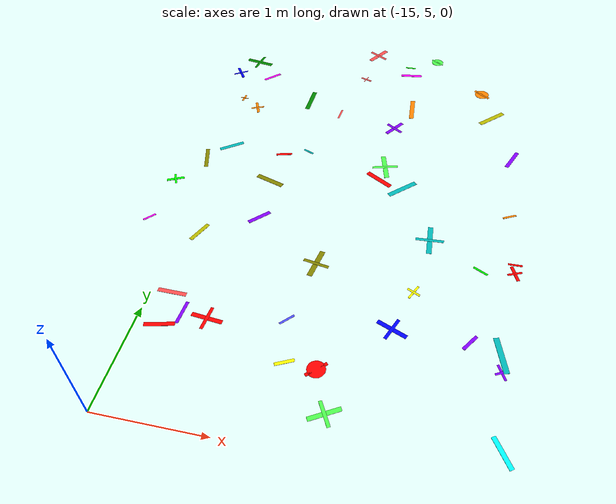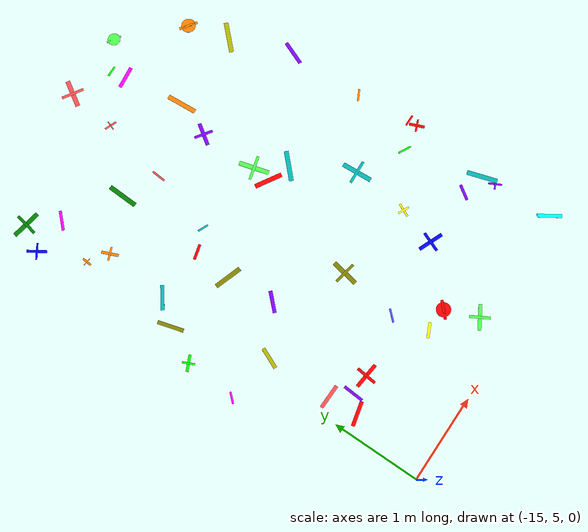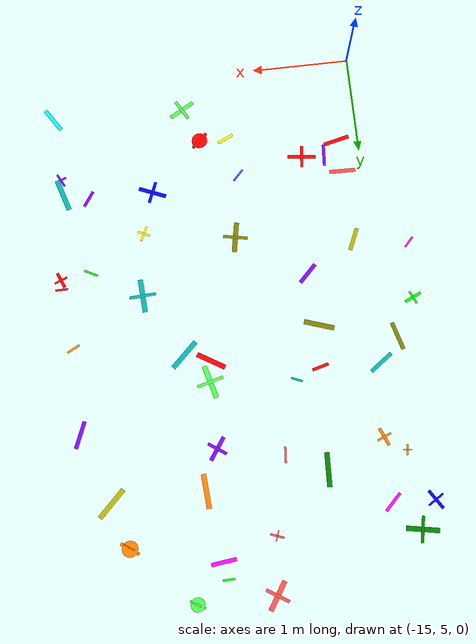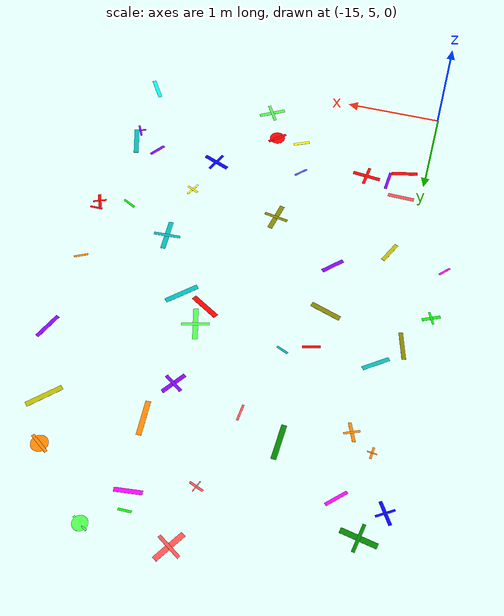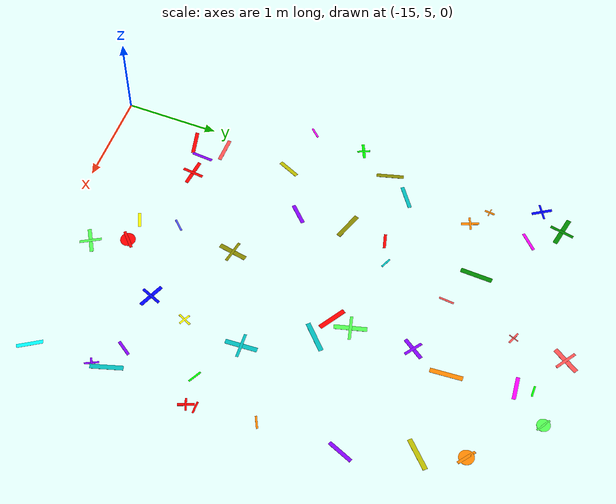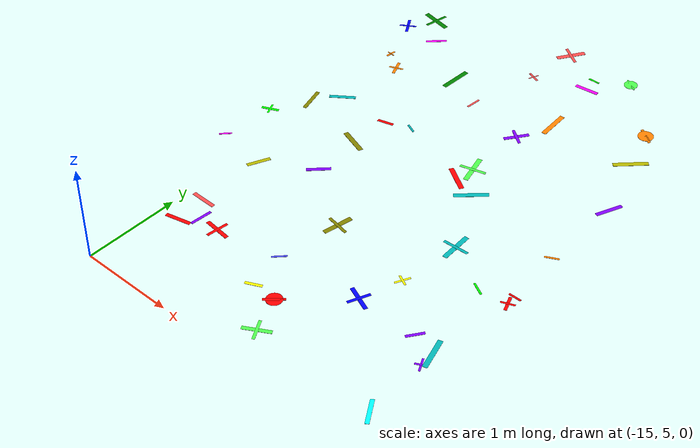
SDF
<sdf version="1.6">
 <world name="default">
  <model name="letter_S_65">
   <static>true</static>
   <pose>-14.63 6.02 0.012 0 0 1.501</pose>
   <link name="link">
    <visual name="visual">
     <geometry><box><size>0.23 0.03 0.002</size></box></geometry>
     <material>
      <ambient>0.5 0.0 1.0 1</ambient>
      <diffuse>0.5 0.0 1.0 1</diffuse>
      <specular>0.1 0.1 0.1 1</specular>
     </material>
    </visual>
   </link>
  </model>
  <model name="letter_M_66">
   <static>true</static>
   <pose>-14.80 6.21 0.011 0 0 6.264</pose>
   <link name="link">
    <visual name="visual">
     <geometry><box><size>0.27 0.04 0.002</size></box></geometry>
     <material>
      <ambient>1.0 0.3 0.3 1</ambient>
      <diffuse>1.0 0.3 0.3 1</diffuse>
      <specular>0.1 0.1 0.1 1</specular>
     </material>
    </visual>
   </link>
  </model>
  <model name="letter_K_67">
   <static>true</static>
   <pose>-14.78 5.87 0.004 0 0 0.232</pose>
   <link name="link">
    <visual name="visual">
     <geometry><box><size>0.27 0.04 0.002</size></box></geometry>
     <material>
      <ambient>1.0 0.0 0.0 1</ambient>
      <diffuse>1.0 0.0 0.0 1</diffuse>
      <specular>0.1 0.1 0.1 1</specular>
     </material>
    </visual>
   </link>
  </model>
  <model name="letter_Z_68">
   <static>true</static>
   <pose>-14.82 6.95 0.009 0 0 4.296</pose>
   <link name="link">
    <visual name="visual">
     <geometry><box><size>0.24 0.04 0.002</size></box></geometry>
     <material>
      <ambient>0.7 0.7 0.0 1</ambient>
      <diffuse>0.7 0.7 0.0 1</diffuse>
      <specular>0.1 0.1 0.1 1</specular>
     </material>
    </visual>
   </link>
  </model>
  <model name="letter_Y_69">
   <static>true</static>
   <pose>-15.38 7.04 0.006 0 0 3.974</pose>
   <link name="link">
    <visual name="visual">
     <geometry><box><size>0.13 0.02 0.002</size></box></geometry>
     <material>
      <ambient>1.0 0.0 1.0 1</ambient>
      <diffuse>1.0 0.0 1.0 1</diffuse>
      <specular>0.1 0.1 0.1 1</specular>
     </material>
    </visual>
   </link>
  </model>
  <model name="letter_X_70">
   <static>true</static>
   <pose>-15.13 8.00 0.010 0 0 4.986</pose>
   <link name="link">
    <visual name="visual">
     <geometry><box><size>0.29 0.04 0.002</size></box></geometry>
     <material>
      <ambient>0.5 0.5 0.0 1</ambient>
      <diffuse>0.5 0.5 0.0 1</diffuse>
      <specular>0.1 0.1 0.1 1</specular>
     </material>
    </visual>
   </link>
  </model>
  <model name="letter_H_71">
   <static>true</static>
   <pose>-15.34 7.62 0.004 0 0 3.576</pose>
   <link name="link">
    <visual name="visual">
     <geometry><box><size>0.18 0.03 0.002</size></box></geometry>
     <material>
      <ambient>0.0 1.0 0.0 1</ambient>
      <diffuse>0.0 1.0 0.0 1</diffuse>
      <specular>0.1 0.1 0.1 1</specular>
     </material>
    </visual>
    <visual name="visual2">
     <pose>0 0 0.001 0 0 1.57</pose>
     <geometry><box><size>0.14 0.02 0.001</size></box></geometry>
     <material><ambient>0.0 1.0 0.0 1</ambient><diffuse>0.0 1.0 0.0 1</diffuse></material>
    </visual>
   </link>
  </model>
  <model name="letter_J_72">
   <static>true</static>
   <pose>-14.93 8.25 0.008 0 0 0.635</pose>
   <link name="link">
    <visual name="visual">
     <geometry><box><size>0.27 0.04 0.002</size></box></geometry>
     <material>
      <ambient>0.0 0.7 0.7 1</ambient>
      <diffuse>0.0 0.7 0.7 1</diffuse>
      <specular>0.1 0.1 0.1 1</specular>
     </material>
    </visual>
   </link>
  </model>
  <model name="letter_I_73">
   <static>true</static>
   <pose>-15.07 9.14 0.006 0 0 4.610</pose>
   <link name="link">
    <visual name="visual">
     <geometry><box><size>0.11 0.02 0.002</size></box></geometry>
     <material>
      <ambient>1.0 0.5 0.0 1</ambient>
      <diffuse>1.0 0.5 0.0 1</diffuse>
      <specular>0.1 0.1 0.1 1</specular>
     </material>
    </visual>
    <visual name="visual2">
     <pose>0 0 0.001 0 0 1.57</pose>
     <geometry><box><size>0.09 0.01 0.001</size></box></geometry>
     <material><ambient>1.0 0.5 0.0 1</ambient><diffuse>1.0 0.5 0.0 1</diffuse></material>
    </visual>
   </link>
  </model>
  <model name="letter_A_74">
   <static>true</static>
   <pose>-14.86 8.99 0.005 0 0 5.111</pose>
   <link name="link">
    <visual name="visual">
     <geometry><box><size>0.19 0.03 0.002</size></box></geometry>
     <material>
      <ambient>1.0 0.5 0.0 1</ambient>
      <diffuse>1.0 0.5 0.0 1</diffuse>
      <specular>0.1 0.1 0.1 1</specular>
     </material>
    </visual>
    <visual name="visual2">
     <pose>0 0 0.001 0 0 1.57</pose>
     <geometry><box><size>0.15 0.02 0.001</size></box></geometry>
     <material><ambient>1.0 0.5 0.0 1</ambient><diffuse>1.0 0.5 0.0 1</diffuse></material>
    </visual>
   </link>
  </model>
  <model name="letter_H_75">
   <static>true</static>
   <pose>-15.11 9.92 0.009 0 0 6.105</pose>
   <link name="link">
    <visual name="visual">
     <geometry><box><size>0.33 0.05 0.002</size></box></geometry>
     <material>
      <ambient>0.0 0.5 0.0 1</ambient>
      <diffuse>0.0 0.5 0.0 1</diffuse>
      <specular>0.1 0.1 0.1 1</specular>
     </material>
    </visual>
    <visual name="visual2">
     <pose>0 0 0.001 0 0 1.57</pose>
     <geometry><box><size>0.26 0.03 0.001</size></box></geometry>
     <material><ambient>0.0 0.5 0.0 1</ambient><diffuse>0.0 0.5 0.0 1</diffuse></material>
    </visual>
   </link>
  </model>
  <model name="letter_U_76">
   <static>true</static>
   <pose>-14.86 9.63 0.012 0 0 3.933</pose>
   <link name="link">
    <visual name="visual">
     <geometry><box><size>0.22 0.03 0.002</size></box></geometry>
     <material>
      <ambient>1.0 0.0 1.0 1</ambient>
      <diffuse>1.0 0.0 1.0 1</diffuse>
      <specular>0.1 0.1 0.1 1</specular>
     </material>
    </visual>
   </link>
  </model>
  <model name="letter_T_77">
   <static>true</static>
   <pose>-15.28 9.65 0.003 0 0 5.283</pose>
   <link name="link">
    <visual name="visual">
     <geometry><box><size>0.22 0.03 0.002</size></box></geometry>
     <material>
      <ambient>0.0 0.0 1.0 1</ambient>
      <diffuse>0.0 0.0 1.0 1</diffuse>
      <specular>0.1 0.1 0.1 1</specular>
     </material>
    </visual>
    <visual name="visual2">
     <pose>0 0 0.001 0 0 1.57</pose>
     <geometry><box><size>0.18 0.02 0.001</size></box></geometry>
     <material><ambient>0.0 0.0 1.0 1</ambient><diffuse>0.0 0.0 1.0 1</diffuse></material>
    </visual>
   </link>
  </model>
  <model name="letter_W_144">
   <static>true</static>
   <pose>-13.72 6.14 0.008 0 0 0.814</pose>
   <link name="link">
    <visual name="visual">
     <geometry><box><size>0.15 0.02 0.002</size></box></geometry>
     <material>
      <ambient>0.3 0.3 1.0 1</ambient>
      <diffuse>0.3 0.3 1.0 1</diffuse>
      <specular>0.1 0.1 0.1 1</specular>
     </material>
    </visual>
   </link>
  </model>
  <model name="letter_W_145">
   <static>true</static>
   <pose>-13.63 5.73 0.011 0 0 3.585</pose>
   <link name="link">
    <visual name="visual">
     <geometry><box><size>0.17 0.03 0.002</size></box></geometry>
     <material>
      <ambient>1.0 1.0 0.0 1</ambient>
      <diffuse>1.0 1.0 0.0 1</diffuse>
      <specular>0.1 0.1 0.1 1</specular>
     </material>
    </visual>
   </link>
  </model>
  <model name="letter_L_146">
   <static>true</static>
   <pose>-14.40 6.01 0.008 0 0 6.177</pose>
   <link name="link">
    <visual name="visual">
     <geometry><box><size>0.29 0.04 0.002</size></box></geometry>
     <material>
      <ambient>1.0 0.0 0.0 1</ambient>
      <diffuse>1.0 0.0 0.0 1</diffuse>
      <specular>0.1 0.1 0.1 1</specular>
     </material>
    </visual>
    <visual name="visual2">
     <pose>0 0 0.001 0 0 1.57</pose>
     <geometry><box><size>0.23 0.03 0.001</size></box></geometry>
     <material><ambient>1.0 0.0 0.0 1</ambient><diffuse>1.0 0.0 0.0 1</diffuse></material>
    </visual>
   </link>
  </model>
  <model name="letter_T_147">
   <static>true</static>
   <pose>-13.62 6.80 0.007 0 0 1.390</pose>
   <link name="link">
    <visual name="visual">
     <geometry><box><size>0.31 0.05 0.002</size></box></geometry>
     <material>
      <ambient>0.5 0.5 0.0 1</ambient>
      <diffuse>0.5 0.5 0.0 1</diffuse>
      <specular>0.1 0.1 0.1 1</specular>
     </material>
    </visual>
    <visual name="visual2">
     <pose>0 0 0.001 0 0 1.57</pose>
     <geometry><box><size>0.25 0.03 0.001</size></box></geometry>
     <material><ambient>0.5 0.5 0.0 1</ambient><diffuse>0.5 0.5 0.0 1</diffuse></material>
    </visual>
   </link>
  </model>
  <model name="letter_J_148">
   <static>true</static>
   <pose>-14.31 7.26 0.010 0 0 0.794</pose>
   <link name="link">
    <visual name="visual">
     <geometry><box><size>0.24 0.04 0.002</size></box></geometry>
     <material>
      <ambient>0.5 0.0 1.0 1</ambient>
      <diffuse>0.5 0.0 1.0 1</diffuse>
      <specular>0.1 0.1 0.1 1</specular>
     </material>
    </visual>
   </link>
  </model>
  <model name="letter_J_149">
   <static>true</static>
   <pose>-14.32 8.23 0.013 0 0 0.267</pose>
   <link name="link">
    <visual name="visual">
     <geometry><box><size>0.17 0.03 0.002</size></box></geometry>
     <material>
      <ambient>1.0 0.0 0.0 1</ambient>
      <diffuse>1.0 0.0 0.0 1</diffuse>
      <specular>0.1 0.1 0.1 1</specular>
     </material>
    </visual>
   </link>
  </model>
  <model name="letter_Z_150">
   <static>true</static>
   <pose>-14.36 7.80 0.004 0 0 5.964</pose>
   <link name="link">
    <visual name="visual">
     <geometry><box><size>0.31 0.05 0.002</size></box></geometry>
     <material>
      <ambient>0.5 0.5 0.0 1</ambient>
      <diffuse>0.5 0.5 0.0 1</diffuse>
      <specular>0.1 0.1 0.1 1</specular>
     </material>
    </visual>
   </link>
  </model>
  <model name="letter_W_151">
   <static>true</static>
   <pose>-14.07 8.33 0.010 0 0 5.882</pose>
   <link name="link">
    <visual name="visual">
     <geometry><box><size>0.12 0.02 0.002</size></box></geometry>
     <material>
      <ambient>0.0 0.7 0.7 1</ambient>
      <diffuse>0.0 0.7 0.7 1</diffuse>
      <specular>0.1 0.1 0.1 1</specular>
     </material>
    </visual>
   </link>
  </model>
  <model name="letter_J_152">
   <static>true</static>
   <pose>-13.87 9.06 0.011 0 0 1.491</pose>
   <link name="link">
    <visual name="visual">
     <geometry><box><size>0.16 0.02 0.002</size></box></geometry>
     <material>
      <ambient>1.0 0.3 0.3 1</ambient>
      <diffuse>1.0 0.3 0.3 1</diffuse>
      <specular>0.1 0.1 0.1 1</specular>
     </material>
    </visual>
   </link>
  </model>
  <model name="letter_R_153">
   <static>true</static>
   <pose>-14.27 9.25 0.010 0 0 1.534</pose>
   <link name="link">
    <visual name="visual">
     <geometry><box><size>0.34 0.05 0.002</size></box></geometry>
     <material>
      <ambient>0.0 0.5 0.0 1</ambient>
      <diffuse>0.0 0.5 0.0 1</diffuse>
      <specular>0.1 0.1 0.1 1</specular>
     </material>
    </visual>
   </link>
  </model>
  <model name="letter_A_154">
   <static>true</static>
   <pose>-13.64 10.39 0.007 0 0 1.010</pose>
   <link name="link">
    <visual name="visual">
     <geometry><box><size>0.31 0.05 0.002</size></box></geometry>
     <material>
      <ambient>1.0 0.3 0.3 1</ambient>
      <diffuse>1.0 0.3 0.3 1</diffuse>
      <specular>0.1 0.1 0.1 1</specular>
     </material>
    </visual>
    <visual name="visual2">
     <pose>0 0 0.001 0 0 1.57</pose>
     <geometry><box><size>0.25 0.03 0.001</size></box></geometry>
     <material><ambient>1.0 0.3 0.3 1</ambient><diffuse>1.0 0.3 0.3 1</diffuse></material>
    </visual>
   </link>
  </model>
  <model name="letter_T_155">
   <static>true</static>
   <pose>-13.70 9.83 0.004 0 0 5.922</pose>
   <link name="link">
    <visual name="visual">
     <geometry><box><size>0.14 0.02 0.002</size></box></geometry>
     <material>
      <ambient>1.0 0.3 0.3 1</ambient>
      <diffuse>1.0 0.3 0.3 1</diffuse>
      <specular>0.1 0.1 0.1 1</specular>
     </material>
    </visual>
    <visual name="visual2">
     <pose>0 0 0.001 0 0 1.57</pose>
     <geometry><box><size>0.11 0.01 0.001</size></box></geometry>
     <material><ambient>1.0 0.3 0.3 1</ambient><diffuse>1.0 0.3 0.3 1</diffuse></material>
    </visual>
   </link>
  </model>
  <model name="letter_I_217">
   <static>true</static>
   <pose>-13.21 5.36 0.006 0 0 0.524</pose>
   <link name="link">
    <visual name="visual">
     <geometry><box><size>0.28 0.04 0.002</size></box></geometry>
     <material>
      <ambient>0.3 1.0 0.3 1</ambient>
      <diffuse>0.3 1.0 0.3 1</diffuse>
      <specular>0.1 0.1 0.1 1</specular>
     </material>
    </visual>
    <visual name="visual2">
     <pose>0 0 0.001 0 0 1.57</pose>
     <geometry><box><size>0.23 0.03 0.001</size></box></geometry>
     <material><ambient>0.3 1.0 0.3 1</ambient><diffuse>0.3 1.0 0.3 1</diffuse></material>
    </visual>
   </link>
  </model>
  <model name="letter_G_218">
   <static>true</static>
   <pose>-13.36 5.72 0.011 0 0 0.750</pose>
   <link name="link">
    <visual name="visual">
     <geometry><box><size>0.21 0.03 0.002</size></box></geometry>
     <material>
      <ambient>1.0 0.0 0.0 1</ambient>
      <diffuse>1.0 0.0 0.0 1</diffuse>
      <specular>0.1 0.1 0.1 1</specular>
     </material>
    </visual>
    <visual name="visual2">
     <geometry><cylinder><radius>0.08</radius><length>0.002</length></cylinder></geometry>
     <material><ambient>1.0 0.0 0.0 1</ambient><diffuse>1.0 0.0 0.0 1</diffuse></material>
    </visual>
   </link>
  </model>
  <model name="letter_A_219">
   <static>true</static>
   <pose>-12.82 6.23 0.007 0 0 5.894</pose>
   <link name="link">
    <visual name="visual">
     <geometry><box><size>0.29 0.04 0.002</size></box></geometry>
     <material>
      <ambient>0.0 0.0 1.0 1</ambient>
      <diffuse>0.0 0.0 1.0 1</diffuse>
      <specular>0.1 0.1 0.1 1</specular>
     </material>
    </visual>
    <visual name="visual2">
     <pose>0 0 0.001 0 0 1.57</pose>
     <geometry><box><size>0.23 0.03 0.001</size></box></geometry>
     <material><ambient>0.0 0.0 1.0 1</ambient><diffuse>0.0 0.0 1.0 1</diffuse></material>
    </visual>
   </link>
  </model>
  <model name="letter_I_220">
   <static>true</static>
   <pose>-12.69 6.66 0.004 0 0 1.126</pose>
   <link name="link">
    <visual name="visual">
     <geometry><box><size>0.16 0.02 0.002</size></box></geometry>
     <material>
      <ambient>1.0 1.0 0.0 1</ambient>
      <diffuse>1.0 1.0 0.0 1</diffuse>
      <specular>0.1 0.1 0.1 1</specular>
     </material>
    </visual>
    <visual name="visual2">
     <pose>0 0 0.001 0 0 1.57</pose>
     <geometry><box><size>0.13 0.02 0.001</size></box></geometry>
     <material><ambient>1.0 1.0 0.0 1</ambient><diffuse>1.0 1.0 0.0 1</diffuse></material>
    </visual>
   </link>
  </model>
  <model name="letter_T_221">
   <static>true</static>
   <pose>-12.62 7.31 0.003 0 0 1.630</pose>
   <link name="link">
    <visual name="visual">
     <geometry><box><size>0.34 0.05 0.002</size></box></geometry>
     <material>
      <ambient>0.0 0.7 0.7 1</ambient>
      <diffuse>0.0 0.7 0.7 1</diffuse>
      <specular>0.1 0.1 0.1 1</specular>
     </material>
    </visual>
    <visual name="visual2">
     <pose>0 0 0.001 0 0 1.57</pose>
     <geometry><box><size>0.27 0.03 0.001</size></box></geometry>
     <material><ambient>0.0 0.7 0.7 1</ambient><diffuse>0.0 0.7 0.7 1</diffuse></material>
    </visual>
   </link>
  </model>
  <model name="letter_W_222">
   <static>true</static>
   <pose>-12.98 7.96 0.005 0 0 0.766</pose>
   <link name="link">
    <visual name="visual">
     <geometry><box><size>0.34 0.05 0.002</size></box></geometry>
     <material>
      <ambient>0.0 0.7 0.7 1</ambient>
      <diffuse>0.0 0.7 0.7 1</diffuse>
      <specular>0.1 0.1 0.1 1</specular>
     </material>
    </visual>
   </link>
  </model>
  <model name="letter_V_223">
   <static>true</static>
   <pose>-13.24 8.05 0.006 0 0 2.602</pose>
   <link name="link">
    <visual name="visual">
     <geometry><box><size>0.31 0.05 0.002</size></box></geometry>
     <material>
      <ambient>1.0 0.0 0.0 1</ambient>
      <diffuse>1.0 0.0 0.0 1</diffuse>
      <specular>0.1 0.1 0.1 1</specular>
     </material>
    </visual>
   </link>
  </model>
  <model name="letter_I_224">
   <static>true</static>
   <pose>-13.21 8.26 0.005 0 0 1.839</pose>
   <link name="link">
    <visual name="visual">
     <geometry><box><size>0.34 0.05 0.002</size></box></geometry>
     <material>
      <ambient>0.3 1.0 0.3 1</ambient>
      <diffuse>0.3 1.0 0.3 1</diffuse>
      <specular>0.1 0.1 0.1 1</specular>
     </material>
    </visual>
    <visual name="visual2">
     <pose>0 0 0.001 0 0 1.57</pose>
     <geometry><box><size>0.27 0.03 0.001</size></box></geometry>
     <material><ambient>0.3 1.0 0.3 1</ambient><diffuse>0.3 1.0 0.3 1</diffuse></material>
    </visual>
   </link>
  </model>
  <model name="letter_S_225">
   <static>true</static>
   <pose>-13.06 9.33 0.004 0 0 4.782</pose>
   <link name="link">
    <visual name="visual">
     <geometry><box><size>0.34 0.05 0.002</size></box></geometry>
     <material>
      <ambient>1.0 0.5 0.0 1</ambient>
      <diffuse>1.0 0.5 0.0 1</diffuse>
      <specular>0.1 0.1 0.1 1</specular>
     </material>
    </visual>
   </link>
  </model>
  <model name="letter_H_226">
   <static>true</static>
   <pose>-13.21 8.93 0.010 0 0 4.113</pose>
   <link name="link">
    <visual name="visual">
     <geometry><box><size>0.26 0.04 0.002</size></box></geometry>
     <material>
      <ambient>0.5 0.0 1.0 1</ambient>
      <diffuse>0.5 0.0 1.0 1</diffuse>
      <specular>0.1 0.1 0.1 1</specular>
     </material>
    </visual>
    <visual name="visual2">
     <pose>0 0 0.001 0 0 1.57</pose>
     <geometry><box><size>0.21 0.03 0.001</size></box></geometry>
     <material><ambient>0.5 0.0 1.0 1</ambient><diffuse>0.5 0.0 1.0 1</diffuse></material>
    </visual>
   </link>
  </model>
  <model name="letter_R_227">
   <static>true</static>
   <pose>-13.19 10.19 0.009 0 0 0.029</pose>
   <link name="link">
    <visual name="visual">
     <geometry><box><size>0.12 0.02 0.002</size></box></geometry>
     <material>
      <ambient>0.0 1.0 0.0 1</ambient>
      <diffuse>0.0 1.0 0.0 1</diffuse>
      <specular>0.1 0.1 0.1 1</specular>
     </material>
    </visual>
   </link>
  </model>
  <model name="letter_B_228">
   <static>true</static>
   <pose>-13.16 10.02 0.009 0 0 0.123</pose>
   <link name="link">
    <visual name="visual">
     <geometry><box><size>0.25 0.04 0.002</size></box></geometry>
     <material>
      <ambient>1.0 0.0 1.0 1</ambient>
      <diffuse>1.0 0.0 1.0 1</diffuse>
      <specular>0.1 0.1 0.1 1</specular>
     </material>
    </visual>
   </link>
  </model>
  <model name="letter_O_229">
   <static>true</static>
   <pose>-12.87 10.39 0.008 0 0 2.586</pose>
   <link name="link">
    <visual name="visual">
     <geometry><box><size>0.17 0.02 0.002</size></box></geometry>
     <material>
      <ambient>0.3 1.0 0.3 1</ambient>
      <diffuse>0.3 1.0 0.3 1</diffuse>
      <specular>0.1 0.1 0.1 1</specular>
     </material>
    </visual>
    <visual name="visual2">
     <geometry><cylinder><radius>0.07</radius><length>0.002</length></cylinder></geometry>
     <material><ambient>0.3 1.0 0.3 1</ambient><diffuse>0.3 1.0 0.3 1</diffuse></material>
    </visual>
   </link>
  </model>
  <model name="letter_V_292">
   <static>true</static>
   <pose>-11.86 5.33 0.012 0 0 5.283</pose>
   <link name="link">
    <visual name="visual">
     <geometry><box><size>0.27 0.04 0.002</size></box></geometry>
     <material>
      <ambient>0.0 1.0 1.0 1</ambient>
      <diffuse>0.0 1.0 1.0 1</diffuse>
      <specular>0.1 0.1 0.1 1</specular>
     </material>
    </visual>
   </link>
  </model>
  <model name="letter_P_293">
   <static>true</static>
   <pose>-11.90 6.16 0.012 0 0 1.872</pose>
   <link name="link">
    <visual name="visual">
     <geometry><box><size>0.34 0.05 0.002</size></box></geometry>
     <material>
      <ambient>0.0 0.7 0.7 1</ambient>
      <diffuse>0.0 0.7 0.7 1</diffuse>
      <specular>0.1 0.1 0.1 1</specular>
     </material>
    </visual>
   </link>
  </model>
  <model name="letter_B_294">
   <static>true</static>
   <pose>-12.16 6.23 0.010 0 0 4.109</pose>
   <link name="link">
    <visual name="visual">
     <geometry><box><size>0.18 0.03 0.002</size></box></geometry>
     <material>
      <ambient>0.5 0.0 1.0 1</ambient>
      <diffuse>0.5 0.0 1.0 1</diffuse>
      <specular>0.1 0.1 0.1 1</specular>
     </material>
    </visual>
   </link>
  </model>
  <model name="letter_L_295">
   <static>true</static>
   <pose>-11.89 6.00 0.011 0 0 5.188</pose>
   <link name="link">
    <visual name="visual">
     <geometry><box><size>0.15 0.02 0.002</size></box></geometry>
     <material>
      <ambient>0.5 0.0 1.0 1</ambient>
      <diffuse>0.5 0.0 1.0 1</diffuse>
      <specular>0.1 0.1 0.1 1</specular>
     </material>
    </visual>
    <visual name="visual2">
     <pose>0 0 0.001 0 0 1.57</pose>
     <geometry><box><size>0.12 0.02 0.001</size></box></geometry>
     <material><ambient>0.5 0.0 1.0 1</ambient><diffuse>0.5 0.0 1.0 1</diffuse></material>
    </visual>
   </link>
  </model>
  <model name="letter_Z_296">
   <static>true</static>
   <pose>-11.81 7.16 0.011 0 0 3.153</pose>
   <link name="link">
    <visual name="visual">
     <geometry><box><size>0.13 0.02 0.002</size></box></geometry>
     <material>
      <ambient>1.0 0.0 0.0 1</ambient>
      <diffuse>1.0 0.0 0.0 1</diffuse>
      <specular>0.1 0.1 0.1 1</specular>
     </material>
    </visual>
   </link>
  </model>
  <model name="letter_A_297">
   <static>true</static>
   <pose>-11.81 7.06 0.005 0 0 5.103</pose>
   <link name="link">
    <visual name="visual">
     <geometry><box><size>0.17 0.03 0.002</size></box></geometry>
     <material>
      <ambient>1.0 0.0 0.0 1</ambient>
      <diffuse>1.0 0.0 0.0 1</diffuse>
      <specular>0.1 0.1 0.1 1</specular>
     </material>
    </visual>
    <visual name="visual2">
     <pose>0 0 0.001 0 0 1.57</pose>
     <geometry><box><size>0.14 0.02 0.001</size></box></geometry>
     <material><ambient>1.0 0.0 0.0 1</ambient><diffuse>1.0 0.0 0.0 1</diffuse></material>
    </visual>
   </link>
  </model>
  <model name="letter_U_298">
   <static>true</static>
   <pose>-12.12 7.02 0.013 0 0 5.808</pose>
   <link name="link">
    <visual name="visual">
     <geometry><box><size>0.15 0.02 0.002</size></box></geometry>
     <material>
      <ambient>0.0 1.0 0.0 1</ambient>
      <diffuse>0.0 1.0 0.0 1</diffuse>
      <specular>0.1 0.1 0.1 1</specular>
     </material>
    </visual>
   </link>
  </model>
  <model name="letter_Y_300">
   <static>true</static>
   <pose>-11.88 7.78 0.009 0 0 0.478</pose>
   <link name="link">
    <visual name="visual">
     <geometry><box><size>0.14 0.02 0.002</size></box></geometry>
     <material>
      <ambient>1.0 0.5 0.0 1</ambient>
      <diffuse>1.0 0.5 0.0 1</diffuse>
      <specular>0.1 0.1 0.1 1</specular>
     </material>
    </visual>
   </link>
  </model>
  <model name="letter_Z_301">
   <static>true</static>
   <pose>-12.13 9.35 0.004 0 0 0.787</pose>
   <link name="link">
    <visual name="visual">
     <geometry><box><size>0.35 0.05 0.002</size></box></geometry>
     <material>
      <ambient>0.7 0.7 0.0 1</ambient>
      <diffuse>0.7 0.7 0.0 1</diffuse>
      <specular>0.1 0.1 0.1 1</specular>
     </material>
    </visual>
   </link>
  </model>
  <model name="letter_V_302">
   <static>true</static>
   <pose>-11.88 8.65 0.013 0 0 4.322</pose>
   <link name="link">
    <visual name="visual">
     <geometry><box><size>0.28 0.04 0.002</size></box></geometry>
     <material>
      <ambient>0.5 0.0 1.0 1</ambient>
      <diffuse>0.5 0.0 1.0 1</diffuse>
      <specular>0.1 0.1 0.1 1</specular>
     </material>
    </visual>
   </link>
  </model>
  <model name="letter_C_305">
   <static>true</static>
   <pose>-12.27 9.80 0.007 0 0 2.528</pose>
   <link name="link">
    <visual name="visual">
     <geometry><box><size>0.21 0.03 0.002</size></box></geometry>
     <material>
      <ambient>1.0 0.5 0.0 1</ambient>
      <diffuse>1.0 0.5 0.0 1</diffuse>
      <specular>0.1 0.1 0.1 1</specular>
     </material>
    </visual>
    <visual name="visual2">
     <geometry><cylinder><radius>0.08</radius><length>0.002</length></cylinder></geometry>
     <material><ambient>1.0 0.5 0.0 1</ambient><diffuse>1.0 0.5 0.0 1</diffuse></material>
    </visual>
   </link>
  </model>
 </world>
</sdf>
